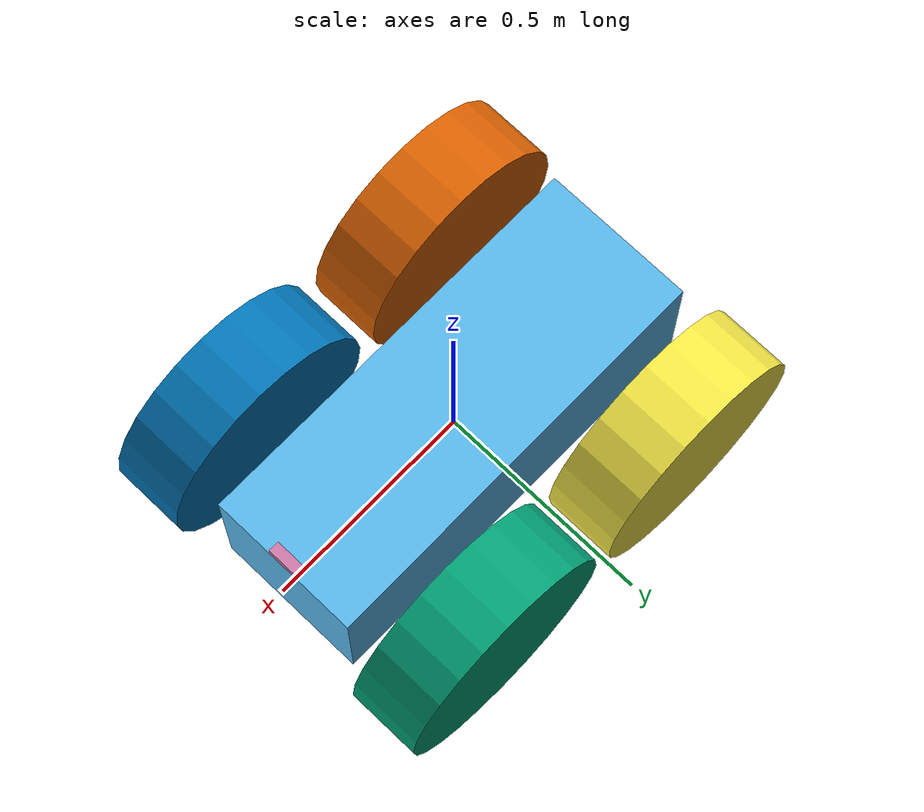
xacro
<?xml version="1.0"?>
<robot name="testrover" xmlns:xacro="http://www.ros.org/wiki/xacro">

    <!-- Load the Gazebo-ROS Control interface -->
    <gazebo>
        <plugin name="gazebo_ros_control" filename="libgazebo_ros_control.so">
            <robotNamespace>/testrover</robotNamespace>
        </plugin>
    </gazebo>

    <!-- Define the kinect -->
    <xacro:include filename="$(find rover_robots)/urdf/macros/accessories/kinect.urdf.xacro" />

    <!-- Define the IMU -->
    <xacro:include filename="$(find rover_robots)/urdf/macros/accessories/imu.urdf.xacro" />

    <!-- Macro detailing the reactions of each wheel -->
    <xacro:include filename="$(find rover_robots)/urdf/macros/components/wheel.urdf.xacro" />

    <xacro:property name="PI" value="3.1415926535897931" />

    <!-- All dimensions in SI units (kg, m, etc.)-->

    <!-- Chassis dimensions -->
    <xacro:property name="chassis_length" value=".972"/>
    <xacro:property name="chassis_width" value=".36"/>
    <xacro:property name="chassis_height" value=".329"/>
    <xacro:property name="chassis_mass" value="118.092"/>

    <!-- Wheel dimensions -->
    <xacro:property name="wheel_radius" value=".2667"/>
    <xacro:property name="wheel_depth" value=".168415"/>
    <xacro:property name="wheel_mass" value="4.0"/>

    <!-- Wheel positioning -->
    <xacro:property name="wheel_depth" value="0.168415"/>
    <xacro:property name="wheel_spacing_x" value="0.2858748"/>
    <xacro:property name="wheel_spacing_y" value="0.33675"/>

    <!-- Camera location -->
    <xacro:property name="camera_mnt_x" value="${(-.025+chassis_length)/2}"/>
    <xacro:property name="camera_mnt_y" value="0.0"/>
    <xacro:property name="camera_mnt_z" value="${(.027+chassis_height)/2}"/>

    <!-- Link and joint defining where the ground is on the robot -->
    <link name="base_footprint"/>

    <!-- Create base_link for central robot chassis -->
    <link name="base_link">
        <visual>
            <origin xyz="0 0 0" rpy="0 0 0"/>
            <geometry>
                <box size="${chassis_length} ${chassis_width} ${chassis_height}"/>
            </geometry>
        </visual>
        <collision>
            <origin xyz="0 0 0" rpy="0 0 0"/>
            <geometry>
                <box size="${chassis_length} ${chassis_width} ${chassis_height}"/>
            </geometry>
        </collision>
        <inertial>
            <origin xyz="0 0 0" rpy="0 0 0"/>
            <mass value="${chassis_mass}"/>
            <inertia ixx="1.25" ixy="0.0" ixz="0.0"
                     iyy="7.0" iyz="0.0" izz="8.0" />
        </inertial>
    </link>

    <joint name="base_joint" type="fixed">
        <parent link="base_link"/>
        <child link="base_footprint" />
        <origin xyz="0 0 .2667" rpy="0 0 0"/>
    </joint>

    <!-- Declare the wheels and their origins -->
    <xacro:wheel prefix="front_left" parent="base_link" wheelrad="${wheel_radius}" wheeldepth="${wheel_depth}" wheelkg="${wheel_mass}" >
        <origin xyz="${wheel_spacing_x} ${wheel_spacing_y} 0.0" rpy="0 0 0"/>
        <inertia ixx="0.08" ixy="0" ixz="0"
                 iyy="0.14" iyz="0" izz="0.08" />
    </xacro:wheel>

    <xacro:wheel prefix="rear_left" parent="base_link" wheelrad="${wheel_radius}" wheeldepth="${wheel_depth}" wheelkg="${wheel_mass}">
        <origin xyz="${-wheel_spacing_x} ${wheel_spacing_y} 0.0" rpy="0 0 0"/>
        <inertia ixx="0.08" ixy="0" ixz="0"
                 iyy="0.14" iyz="0" izz="0.08" />
    </xacro:wheel>

    <xacro:wheel prefix="front_right" parent="base_link" wheelrad="${wheel_radius}" wheeldepth="${wheel_depth}" wheelkg="${wheel_mass}">
        <origin xyz="${wheel_spacing_x} ${-wheel_spacing_y} 0.0" rpy="0 0 0"/>
        <inertia ixx="0.08" ixy="0" ixz="0"
                 iyy="0.14" iyz="0" izz="0.08" />
    </xacro:wheel>

    <xacro:wheel prefix="rear_right" parent="base_link" wheelrad="${wheel_radius}" wheeldepth="${wheel_depth}" wheelkg="${wheel_mass}">
        <origin xyz="${-wheel_spacing_x} ${-wheel_spacing_y} 0.0" rpy="0 0 0"/>
        <inertia ixx="0.08" ixy="0" ixz="0"
                 iyy="0.14" iyz="0" izz="0.08" />
    </xacro:wheel>

    <!-- Add the kinect at its origin -->
    <xacro:kinect parent="base_link">
        <origin xyz="${camera_mnt_x} ${camera_mnt_y} ${camera_mnt_z}" rpy="0 0 0"/>
    </xacro:kinect>

    <!-- Add the imu at its origin -->

    <xacro:imu parent="base_link">
        <origin xyz="${camera_mnt_x} ${camera_mnt_y} ${camera_mnt_z}" rpy="0 0 0"/>
    </xacro:imu>

</robot>

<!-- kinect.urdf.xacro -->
<!-- define xacro as the namespace referencing the xacro format. Important for compiling xacro files and macros-->
<robot xmlns:xacro="http://www.ros.org/wiki/xacro">

<!-- Macro detailing the Xbox Kinect -->
<!-- Due to the nature of the macro setup, each kinect must be defined in its own xacro file.
     The frameName refrence cannot be given in a xacro:property
-->

<xacro:macro name="kinect" params="parent *origin">

    <!-- Camera size -->
    <xacro:property name="camera_x" value="0.025"/>
    <xacro:property name="camera_y" value="0.07"/>
    <xacro:property name="camera_z" value="0.027"/>

    <!-- Definition of Gazebo camera plugin -->
    <gazebo reference="kinect_link">
        <sensor type="depth" name="kinect1">
            <update_rate>20</update_rate>
            	<plugin name="camera_plugin" filename="libgazebo_ros_openni_kinect.so">
                        <baseline>0.2</baseline>
	                    <alwaysOn>true</alwaysOn>
                        <updateRate>0.0</updateRate>
                        <cameraName>kinect_ir</cameraName>
                        <imageTopicName>/camera/color/image_raw</imageTopicName>
                        <cameraInfoTopicName>/camera/color/camera_info</cameraInfoTopicName>
                        <depthImageTopicName>/camera/depth/image_raw</depthImageTopicName>
                        <depthImageCameraInfoTopicName>/camera/depth/camera_info</depthImageCameraInfoTopicName>
                        <pointCloudTopicName>/camera/depth/points</pointCloudTopicName>
                        <frameName>kinect_link_optical</frameName>
                        <pointCloudCutoff>0.5</pointCloudCutoff>
                        <pointCloudCutoffMax>3.0</pointCloudCutoffMax>
                        <distortionK1>0</distortionK1>
                        <distortionK2>0</distortionK2>
                        <distortionK3>0</distortionK3>
                        <distortionT1>0</distortionT1>
                        <distortionT2>0</distortionT2>
                        <CxPrime>0</CxPrime>
                        <Cx>0</Cx>
                        <Cy>0</Cy>
                        <focalLength>0</focalLength>
                        <hackBaseline>0</hackBaseline>
                </plugin>
        </sensor>
    </gazebo>

       <!-- Create Kinect model -->
    <link name="kinect_link">

        <visual>
            <origin xyz="0 0 0" rpy="0 0 0"/>
            <geometry>
                <box size="${camera_x} ${camera_y} ${camera_z}"/>
            </geometry>
        </visual>

        <collision>
            <origin xyz="0 0 0" rpy="0 0 0"/>
            <geometry>
                <box size="${camera_x} ${camera_y} ${camera_z}"/>
            </geometry>
        </collision>

        <inertial>
            <mass value="1e-5" />
            <origin xyz="0 0 0" rpy="0 0 0"/>
            <inertia ixx="1e-6" ixy="0" ixz="0" iyy="1e-6" iyz="0" izz="1e-6" />
        </inertial>
    </link>

    <joint name="kinect_joint" type="fixed">
        <axis xyz="1 0 0" />
        <xacro:insert_block name="origin"/>
        <parent link="${parent}"/>
        <child link="kinect_link"/>
    </joint>

    <link name="kinect_link_optical">
    </link>

    <joint name="kinect_joint_optical" type="fixed">
        <origin xyz="0 0 0" rpy="${-pi/2} 0 ${-pi/2}"/>
        <parent link="kinect_link"/>
        <child link="kinect_link_optical"/>
    </joint>

</xacro:macro>

</robot>

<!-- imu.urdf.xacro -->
<!-- define xacro as the namespace referencing the xacro format. Important for compiling xacro files and macros-->
<robot xmlns:xacro="http://www.ros.org/wiki/xacro">

<!-- Macro detailing the Xbox Kinect -->
<!-- Due to the nature of the macro setup, each kinect must be defined in its own xacro file.
     The frameName refrence cannot be given in a xacro:property
-->

<xacro:arg name="imu_visual"    default="false"/>

<xacro:macro name="imu" params="parent *origin">

    <!-- The IMU will have no visible geometr -->

    <!-- Definition of Gazebo camera plugin -->
    <gazebo reference="imu_link">
        <sensor type="imu" name="imu">
                <always_on>true</always_on>
                <visualize>$(arg imu_visual)</visualize>
        </sensor>
    </gazebo>

    <!-- IMU plugin description -->
    <gazebo>
        <plugin name="imu_plugin" filename="libgazebo_ros_imu.so">
            <alwaysOn>true</alwaysOn>
            <bodyName>imu_link</bodyName>
            <frameName>imu_link</frameName>
            <topicName>imu</topicName>
            <serviceName>imu_service</serviceName>
            <gaussianNoise>0.0</gaussianNoise>
            <updateRate>0</updateRate>
            <imu>
            <noise>
                <type>gaussian</type>
                <rate>
                <mean>0.0</mean>
                <stddev>2e-4</stddev>
                <bias_mean>0.0000075</bias_mean>
                <bias_stddev>0.0000008</bias_stddev>
                </rate>
                <accel>
                <mean>0.0</mean>
                <stddev>1.7e-2</stddev>
                <bias_mean>0.1</bias_mean>
                <bias_stddev>0.001</bias_stddev>
                </accel>
            </noise>
            </imu>
        </plugin>
    </gazebo>
       <!-- Create IMU model -->
    <link name="imu_link">
    </link>

    <joint name="imu_joint" type="fixed">
        <axis xyz="1 0 0" />
        <xacro:insert_block name="origin"/>
        <parent link="${parent}"/>
        <child link="imu_link"/>
    </joint>

</xacro:macro>

</robot>

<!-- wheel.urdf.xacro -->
<!-- define xacro as the namespace referencing the xacro format. Important for compiling xacro files and macros-->
<robot xmlns:xacro="http://www.ros.org/wiki/xacro">

<!-- Macro detailing the details of each wheel -->
<xacro:macro name="wheel" params="prefix parent wheelrad wheeldepth wheelkg *origin *inertia">

    <!-- Create a link for the wheels -->
    <link name="${prefix}_wheel_link">
        <visual>
            <!-- Set origin to be rotated 90 degrees to have base on ground -->
            <origin xyz="0 0 0" rpy="${PI/2} 0 0"/>
            <geometry>
                <cylinder radius="${wheelrad}" length="${wheeldepth}"/>
            </geometry>
        </visual>

        <collision>
            <origin xyz="0 0 0" rpy="${PI/2} 0 0"/>
            <geometry>
                <cylinder radius="${wheelrad}" length="${wheeldepth}"/>
            </geometry>
        </collision>

        <!-- Inertial values are required for Gazebo -->
        <inertial>
            <origin xyz="0 0 0" rpy="0 0 0"/>
            <mass value="${wheelkg}"/>
            <xacro:insert_block name="inertia"/>
        </inertial>
    </link>

    <joint name="${prefix}_wheel" type="continuous">
        <parent link="${parent}"/>
        <child link="${prefix}_wheel_link"/>

        <!--
            Use insert_block to specify joint (and wheel) position in wheel declaration
        -->
        <xacro:insert_block name="origin"/>

        <!-- Specify rotation axis of wheel -->
        <axis xyz="0 1 0"/>
    </joint>

    <!-- Transission for Gazebo -->
    <transmission name="${prefix}_wheel_trans">
        <type>transmission_interface/SimpleTransmission</type>
        <!--
            Reference the joint in Gazebo. We want a velocity interface here,
            as we want to be able to control the speed of the rover.
        -->
        <joint name="${prefix}_wheel">
            <hardwareInterface>hardware_interface/VelocityJointInterface</hardwareInterface>
        </joint>
        <actuator name="${prefix}_actuator">
            <hardwareInterface>hardware_interface/VelocityJointInterface</hardwareInterface>
            <mechanicalreduction>1</mechanicalreduction>
        </actuator>
    </transmission>

</xacro:macro>

</robot>
